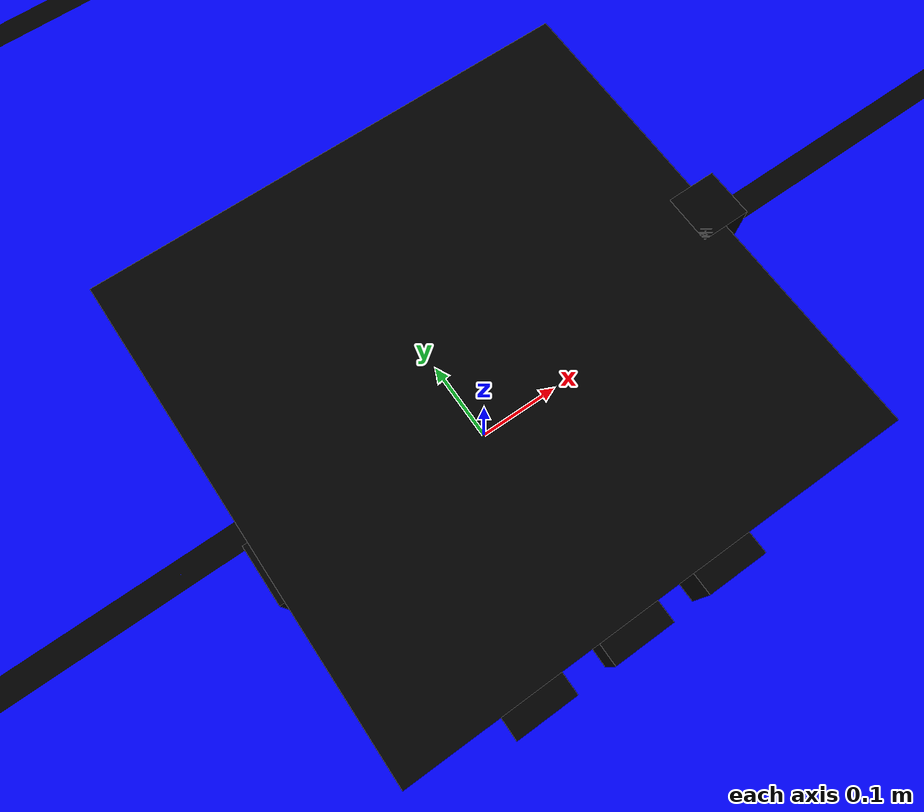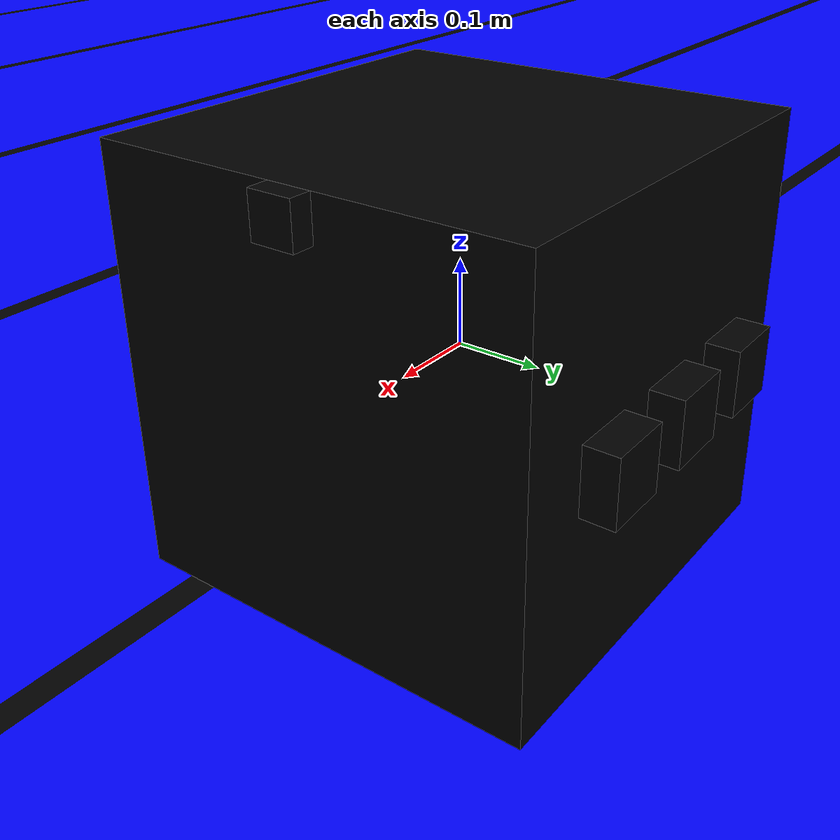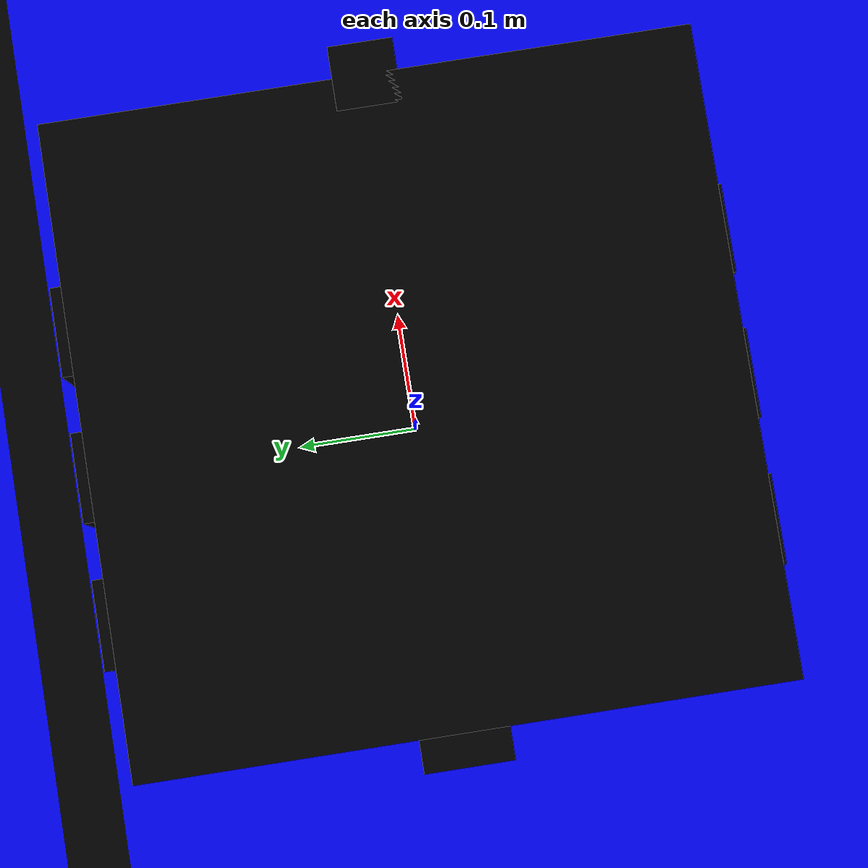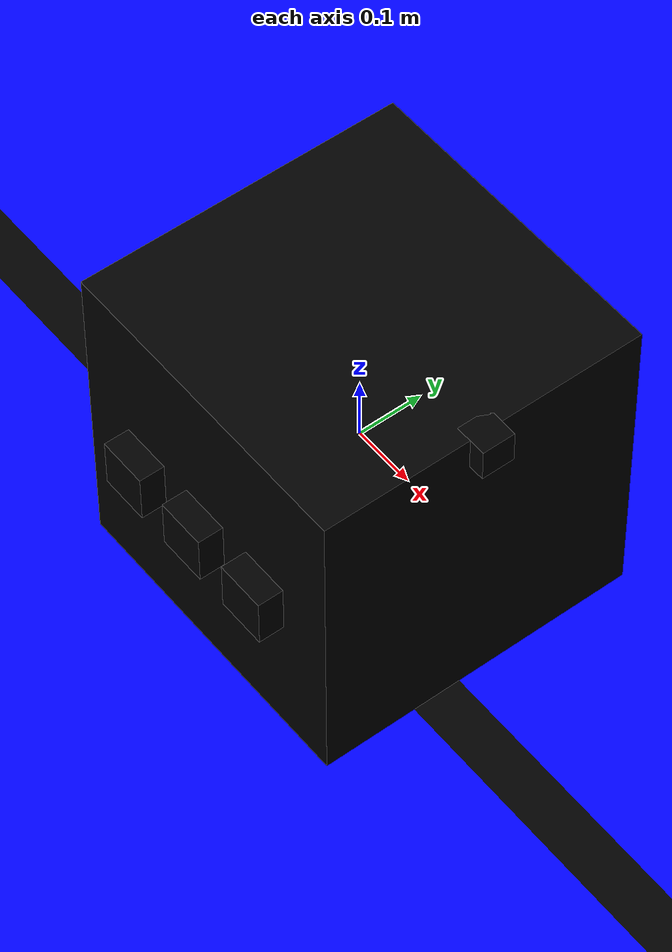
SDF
<sdf version="1.5">
 <world name="default">
  <include><uri>model://sun</uri></include>
  <model name="sauvc pool"><include><uri>model://sauvc pool</uri><pose>0 0 -1.4 0 0 0</pose></include></model>
  <include><uri>model://auv_demo</uri></include>
 </world>
</sdf>

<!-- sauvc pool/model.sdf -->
<sdf version='1.6'>
  <model name='sauvc pool'>
    <link name='pool'>
      <gravity>0</gravity>
      <pose>0 0 0 0 0 0</pose>
      <collision name ='pool_collision'>
        <geometry>
          <mesh>
            <uri>model://sauvc pool/meshes/pool.dae</uri>
          </mesh>
        </geometry>
      </collision>
      <visual name='pool_visual'>
        <geometry>
          <mesh>
            <uri>model://sauvc pool/meshes/pool.dae</uri>
          </mesh>
        </geometry>
      </visual>
    </link>
    <static>true</static>
  </model>
</sdf>

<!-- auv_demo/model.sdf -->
<sdf version='1.6'>
  <model name='auv_demo'>
   <link name='hull'>
	<pose>0 0 0 0 0 0</pose>
	<inertial>
	<mass>14.172</mass>
	</inertial>
	   <collision name="hull_collision">
	      <geometry>
		<mesh>
		 <uri>model://auv_demo/meshes/hull.dae</uri>
	     	</mesh>
	      </geometry>
	    </collision>

	 <visual name="hull_visual">
	   <geometry>
	     <mesh>
	       <uri>model://auv_demo/meshes/hull.dae</uri>
	     </mesh>
	   </geometry>
	 </visual>
   </link>
   <link name='thruster_1'>
	<pose>0.125 -0.25 0 0 0 0</pose>
	<gravity>0</gravity>
	<inertial>
	<mass>0.39</mass>
	</inertial>
	   <collision name="thruster_1_collision">
	      <geometry>
		<mesh>
		 <uri>model://auv_demo/meshes/thruster.dae</uri>
	     	</mesh>
	      </geometry>
	    </collision>

	 <visual name="thruster_1_visual">
	   <geometry>
	     <mesh>
	       <uri>model://auv_demo/meshes/thruster.dae</uri>
	     </mesh>
	   </geometry>
           <material>
	     <ambient>0 0 0 1</ambient>
	     <diffuse>0 0 0 1</diffuse>
             <specular>0 0 0 1</specular>
             <emissive>1 1 1 1</emissive>
	   </material>
	 </visual>
   </link>

  <link name='front_camera_link'>
	<pose>0.25 0 0.225 0 0 0</pose>
	<gravity>0</gravity>
	<inertial>
	<mass>1e-05</mass>
	</inertial>
	   <collision name="front_camera_link_collision">
	      <geometry>
          <box>
            <size>0.05 0.05 0.05</size>
          </box>
        </geometry>
	    </collision>

	 <visual name="front_camera_link_visual">
	   <geometry>
       <box>
         <size>0.05 0.05 0.05</size>
       </box>
	   </geometry>
           <material>
	     <ambient>0 0 0 1</ambient>
	     <diffuse>0 0 0 1</diffuse>
             <specular>0 0 0 1</specular>
             <emissive>1 0 0 1</emissive>
	   </material>
	 </visual>
   <sensor type="camera" name="camera1">
     <update_rate>30.0</update_rate>
     <camera name="front_camera">
       <horizontal_fov>1.3962634</horizontal_fov>
       <image>
         <width>648</width>
         <height>488</height>
         <format>R8G8B8</format>
       </image>
       <clip>
         <near>0.02</near>
         <far>300</far>
       </clip>
       <noise>
         <type>gaussian</type>
         <!-- Noise is sampled independently per pixel on each frame.
              That pixel's noise value is added to each of its color
              channels, which at that point lie in the range [0,1]. -->
         <mean>0.0</mean>
         <stddev>0.007</stddev>
       </noise>
     </camera>
     <plugin name="camera_controller" filename="libgazebo_ros_camera.so">
       <alwaysOn>true</alwaysOn>
       <updateRate>0.0</updateRate>
       <cameraName>front_camera</cameraName>
       <imageTopicName>image_rect_color</imageTopicName>
       <cameraInfoTopicName>camera_info</cameraInfoTopicName>
       <frameName>front_camera_link</frameName>
       <hackBaseline>0.07</hackBaseline>
       <distortionK1>0.0</distortionK1>
       <distortionK2>0.0</distortionK2>
       <distortionK3>0.0</distortionK3>
       <distortionT1>0.0</distortionT1>
       <distortionT2>0.0</distortionT2>
     </plugin>
   </sensor>
   </link>
   <joint name='hull_joint_9' type='fixed'>
    <parent>hull</parent>
    <child>front_camera_link</child>
   </joint>

   <link name='bottom_camera_link'>
 	<pose>0 0 -0.25 0 1.57 0</pose>
 	<gravity>0</gravity>
 	<inertial>
 	<mass>1e-05</mass>
 	</inertial>
 	   <collision name="bottom_camera_link_collision">
 	      <geometry>
           <box>
             <size>0.05 0.05 0.05</size>
           </box>
         </geometry>
 	    </collision>

 	 <visual name="bottom_camera_link_visual">
 	   <geometry>
        <box>
          <size>0.05 0.05 0.05</size>
        </box>
 	   </geometry>
            <material>
 	     <ambient>0 0 0 1</ambient>
 	     <diffuse>0 0 0 1</diffuse>
              <specular>0 0 0 1</specular>
              <emissive>1 0 0 1</emissive>
 	   </material>
 	 </visual>
    <sensor type="camera" name="camera1">
      <update_rate>30.0</update_rate>
      <camera name="bottom_camera">
        <horizontal_fov>1.3962634</horizontal_fov>
        <image>
          <width>648</width>
          <height>488</height>
          <format>R8G8B8</format>
        </image>
        <clip>
          <near>0.02</near>
          <far>300</far>
        </clip>
        <noise>
          <type>gaussian</type>
          <!-- Noise is sampled independently per pixel on each frame.
               That pixel's noise value is added to each of its color
               channels, which at that point lie in the range [0,1]. -->
          <mean>0.0</mean>
          <stddev>0.007</stddev>
        </noise>
      </camera>
      <plugin name="camera_controller" filename="libgazebo_ros_camera.so">
        <alwaysOn>true</alwaysOn>
        <updateRate>0.0</updateRate>
        <cameraName>bottom_camera</cameraName>
        <imageTopicName>image_rect_color</imageTopicName>
        <cameraInfoTopicName>camera_info</cameraInfoTopicName>
        <frameName>bottom_camera_link</frameName>
        <hackBaseline>0.07</hackBaseline>
        <distortionK1>0.0</distortionK1>
        <distortionK2>0.0</distortionK2>
        <distortionK3>0.0</distortionK3>
        <distortionT1>0.0</distortionT1>
        <distortionT2>0.0</distortionT2>
      </plugin>
    </sensor>
    </link>
    <joint name='hull_joint_10' type='fixed'>
     <parent>hull</parent>
     <child>bottom_camera_link</child>
    </joint>

   <link name='thruster_2'>
	<pose>0.125 0.25 0 0 0 0</pose>
	<gravity>0</gravity>
	<inertial>
	<mass>0.39</mass>
	</inertial>
	   <collision name="thruster_2_collision">
	      <geometry>
		<mesh>
		 <uri>model://auv_demo/meshes/thruster.dae</uri>
	     	</mesh>
	      </geometry>
	    </collision>

	 <visual name="thruster_2_visual">
	   <geometry>
	     <mesh>
	       <uri>model://auv_demo/meshes/thruster.dae</uri>
	     </mesh>
	   </geometry>
           <material>
	     <ambient>0 0 0 1</ambient>
	     <diffuse>0 0 0 1</diffuse>
             <specular>0 0 0 1</specular>
             <emissive>1 1 1 1</emissive>
	   </material>
	 </visual>
   </link>
   <link name='thruster_3'>
	<pose>-0.25 0 0 0 0 0</pose>
	<gravity>0</gravity>
	<inertial>
	<mass>0.39</mass>
	</inertial>
	   <collision name="thruster_3_collision">
	      <geometry>
		<mesh>
		 <uri>model://auv_demo/meshes/thruster.dae</uri>
	     	</mesh>
	      </geometry>
	    </collision>

	 <visual name="thruster_3_visual">
	   <geometry>
	     <mesh>
	       <uri>model://auv_demo/meshes/thruster.dae</uri>
	     </mesh>
	   </geometry>
           <material>
	     <ambient>0 0 0 1</ambient>
	     <diffuse>0 0 0 1</diffuse>
             <specular>0 0 0 1</specular>
             <emissive>1 1 1 1</emissive>
	   </material>
	 </visual>
   </link>
   <link name='thruster_4'>
	<pose>0 0.25 0 0 0 0</pose>
	<gravity>0</gravity>
	<inertial>
	<mass>0.39</mass>
	</inertial>
	   <collision name="thruster_4_collision">
	      <geometry>
		<mesh>
		 <uri>model://auv_demo/meshes/thruster.dae</uri>
	     	</mesh>
	      </geometry>
	    </collision>

	 <visual name="thruster_4_visual">
	   <geometry>
	     <mesh>
	       <uri>model://auv_demo/meshes/thruster.dae</uri>
	     </mesh>
	   </geometry>
           <material>
	     <ambient>0 0 0 1</ambient>
	     <diffuse>0 0 0 1</diffuse>
             <specular>0 0 0 1</specular>
             <emissive>1 1 1 1</emissive>
	   </material>
	 </visual>
   </link>
   <link name='thruster_5'>
	<pose>0 -0.25 0 0 0 0</pose>
	<gravity>0</gravity>
	<inertial>
	<mass>0.39</mass>
	</inertial>
	   <collision name="thruster_5_collision">
	      <geometry>
		<mesh>
		 <uri>model://auv_demo/meshes/thruster.dae</uri>
	     	</mesh>
	      </geometry>
	    </collision>

	 <visual name="thruster_5_visual">
	   <geometry>
	     <mesh>
	       <uri>model://auv_demo/meshes/thruster.dae</uri>
	     </mesh>
	   </geometry>
           <material>
	     <ambient>0 0 0 1</ambient>
	     <diffuse>0 0 0 1</diffuse>
             <specular>0 0 0 1</specular>
             <emissive>1 1 1 1</emissive>
	   </material>
	 </visual>
   </link>
   <link name='thruster_p4'>
	<pose>-0.125 0.25 0 0 0 0</pose>
	<gravity>0</gravity>
	<inertial>
	<mass>0.39</mass>
	</inertial>
	   <collision name="thruster_p4_collision">
	      <geometry>
		<mesh>
		 <uri>model://auv_demo/meshes/thruster.dae</uri>
	     	</mesh>
	      </geometry>
	    </collision>

	 <visual name="thruster_p4_visual">
	   <geometry>
	     <mesh>
	       <uri>model://auv_demo/meshes/thruster.dae</uri>
	     </mesh>
	   </geometry>
           <material>
	     <ambient>0 0 0 1</ambient>
	     <diffuse>0 0 0 1</diffuse>
             <specular>0 0 0 1</specular>
             <emissive>1 1 1 1</emissive>
	   </material>
	 </visual>
   </link>
   <link name='thruster_p5'>
	<pose>-0.125 -0.25 0 0 0 0</pose>
	<gravity>0</gravity>
	<inertial>
	<mass>0.39</mass>
	</inertial>
	   <collision name="thruster_p5_collision">
	      <geometry>
		<mesh>
		 <uri>model://auv_demo/meshes/thruster.dae</uri>
	     	</mesh>
	      </geometry>
	    </collision>

	 <visual name="thruster_p5_visual">
	   <geometry>
	     <mesh>
	       <uri>model://auv_demo/meshes/thruster.dae</uri>
	     </mesh>
	   </geometry>
           <material>
	     <ambient>0 0 0 1</ambient>
	     <diffuse>0 0 0 1</diffuse>
             <specular>0 0 0 1</specular>
             <emissive>1 1 1 1</emissive>
	   </material>
	 </visual>
   </link>

   <link name='thruster_6'>
	<pose>0 0 -0.25 0 0 0</pose>
	<gravity>0</gravity>
	<inertial>
	<mass>0.39</mass>
	</inertial>
	   <collision name="thruster_6_collision">
	      <geometry>
		<mesh>
		 <uri>model://auv_demo/meshes/thruster.dae</uri>
	     	</mesh>
	      </geometry>
	    </collision>

	 <visual name="thruster_6_visual">
	   <geometry>
	     <mesh>
	       <uri>model://auv_demo/meshes/thruster.dae</uri>
s	     </mesh>
	   </geometry>
           <material>
	     <ambient>0 0 0 1</ambient>
	     <diffuse>0 0 0 1</diffuse>
             <specular>0 0 0 1</specular>
             <emissive>1 1 1 1</emissive>
	   </material>
	 </visual>
   </link>
<joint name='hull_joint_1' type='fixed'>
 <parent>hull</parent>
 <child>thruster_1</child>
</joint>
<joint name='hull_joint_2' type='fixed'>
 <parent>hull</parent>
 <child>thruster_2</child>
</joint>
<joint name='hull_joint_3' type='fixed'>
 <parent>hull</parent>
 <child>thruster_3</child>
</joint>
<joint name='hull_joint_4' type='fixed'>
 <parent>hull</parent>
 <child>thruster_4</child>
</joint>
<joint name='hull_joint_5' type='fixed'>
 <parent>hull</parent>
 <child>thruster_5</child>
</joint>
<joint name='hull_joint_6' type='fixed'>
 <parent>hull</parent>
 <child>thruster_6</child>
</joint>
<joint name='hull_joint_p4' type='fixed'>
 <parent>hull</parent>
 <child>thruster_p4</child>
</joint>
<joint name='hull_joint_p5' type='fixed'>
 <parent>hull</parent>
 <child>thruster_p5</child>
</joint>
<plugin name="BuoyancyPlugin" filename="libbuoyancy_gazebo_plugin.so">
     <fluid_density>997</fluid_density>
     <fluid_level>0.0</fluid_level>
     <linear_drag>10.0</linear_drag>
     <angular_drag>4.0</angular_drag>
     <buoyancy name="buoyancy">
       <link_name>hull</link_name>
       <geometry>
         <box>
           <size>0.5 0.5 0.5</size>
         </box>
       </geometry>
     </buoyancy>
   </plugin>
 <plugin name="data_publisher" filename="libdata_publisher.so"/>
<plugin name="thruster_plugin" filename="libthruster_plugin.so"/>
  </model>
</sdf>
